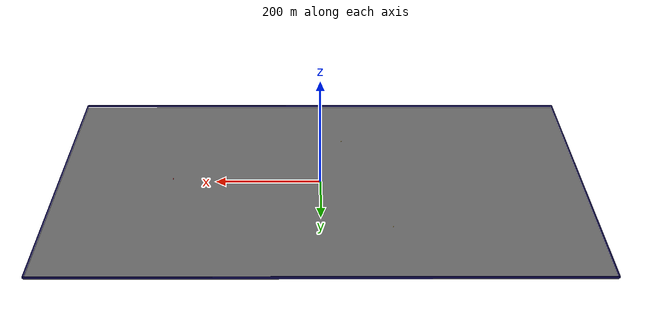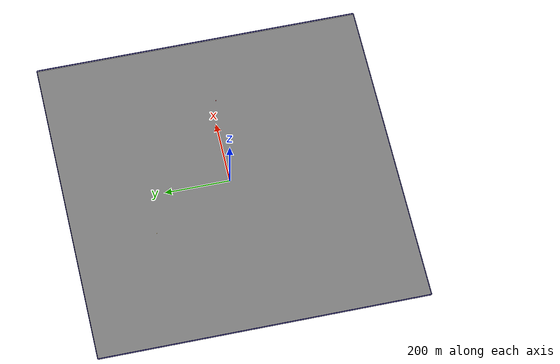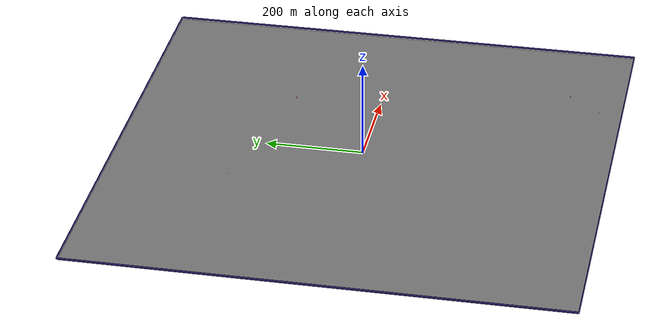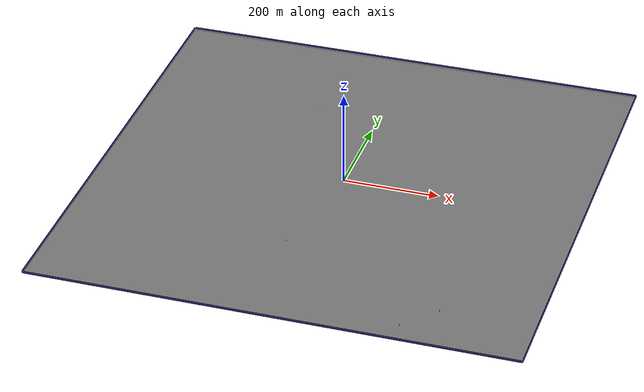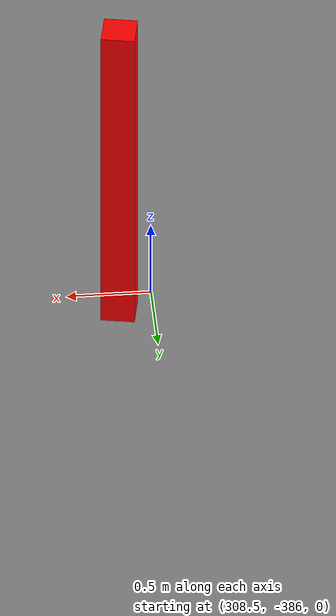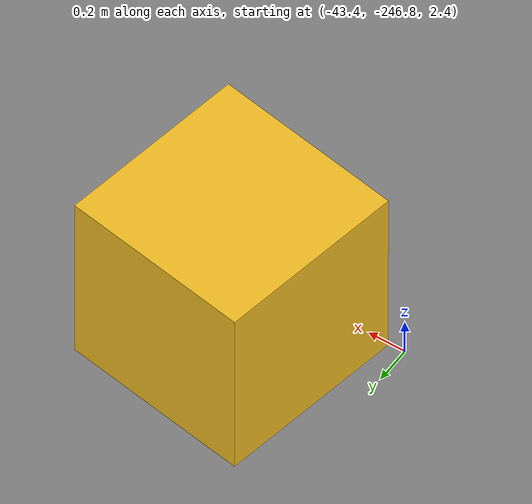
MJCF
<mujoco model="unnamed_model">
  <default>
    <default class="/" />
    <default class="border/" />
    <default class="border_1/" />
    <default class="border_2/" />
    <default class="border_3/" />
    <default class="agentplaceholder/" />
    <default class="placeholder_box/" />
    <default class="tree0/" />
    <default class="tree1/" />
    <default class="stone/" />
    <default class="stone_1/" />
  </default>
  <worldbody>
    <body name="border/">
      <body name="border/border" pos="0 501 2">
        <geom name="border/border_geom" class="border/" type="box" size="500 1 2" rgba="0.035000000000000003 0.016 0.28999999999999998 1" />
      </body>
    </body>
    <body name="border_1/">
      <body name="border_1/border" pos="0 -501 2">
        <geom name="border_1/border_geom" class="border_1/" type="box" size="500 1 2" rgba="0.035000000000000003 0.016 0.28999999999999998 1" />
      </body>
    </body>
    <body name="border_2/">
      <body name="border_2/border" pos="501 0 2">
        <geom name="border_2/border_geom" class="border_2/" type="box" size="1 500 2" rgba="0.035000000000000003 0.016 0.28999999999999998 1" />
      </body>
    </body>
    <body name="border_3/">
      <body name="border_3/border" pos="-501 0 2">
        <geom name="border_3/border_geom" class="border_3/" type="box" size="1 500 2" rgba="0.035000000000000003 0.016 0.28999999999999998 1" />
      </body>
    </body>
    <body euler="0 0 80.145813830119266" name="agentplaceholder/">
      <joint name="agentplaceholder/boxagent_freeJoint/" class="/" type="free" />
      <body name="agentplaceholder/agentplaceholder" pos="-250 0 3" euler="0 0 0">
        <geom name="agentplaceholder/boxagent_geom" class="agentplaceholder/" type="box" size="0.5 0.5 0.5" rgba="0.94899999999999995 0.74509999999999998 0.1333 1" euler="0 0 0" />
      </body>
    </body>
    <body name="placeholder_box/">
      <body name="placeholder_box/placeholder_box" pos="-130.60579999999999 250.53179999999998 0.5" euler="0 0 -143.58312917572744">
        <geom name="placeholder_box/box_geom" class="placeholder_box/" type="box" size="0.5 0.5 0.5" rgba="0.94899999999999995 0.74509999999999998 0.1333 1" euler="0 0 0" />
      </body>
    </body>
    <body name="tree0/">
      <body name="tree0/tree0" pos="308.70094999999998 -385.8485 0.10000000000000001" euler="0 0 -100.64776372392835">
        <geom name="tree0/tree_geom" class="tree0/" type="box" size="0.10000000000000001 0.10000000000000001 2" rgba="1 0 0 1" />
      </body>
    </body>
    <body name="tree1/">
      <body name="tree1/tree1" pos="283.59399999999999 -17.079099999999983 0.10000000000000001" euler="0 0 17.931792886929713">
        <geom name="tree1/tree_geom" class="tree1/" type="box" size="0.10000000000000001 0.10000000000000001 2" rgba="1 0 0 1" />
      </body>
    </body>
    <body name="stone/">
      <body name="stone/stone" pos="248.8441 -452.6189 0.10000000000000001" euler="0 0 131.53862736953295">
        <geom name="stone/stone_geom" class="stone/" type="box" size="0.10000000000000001 0.10000000000000001 2" rgba="1 0 0 1" />
      </body>
    </body>
    <body name="stone_1/">
      <body name="stone_1/stone" pos="198.26564999999999 178.79200000000003 0.10000000000000001" euler="0 0 119.24135280048591">
        <geom name="stone_1/stone_geom" class="stone_1/" type="box" size="0.10000000000000001 0.10000000000000001 2" rgba="1 0 0 1" />
      </body>
    </body>
    <geom name="base_plane" class="/" type="plane" size="500 500 0.10000000000000001" />
  </worldbody>
</mujoco>
